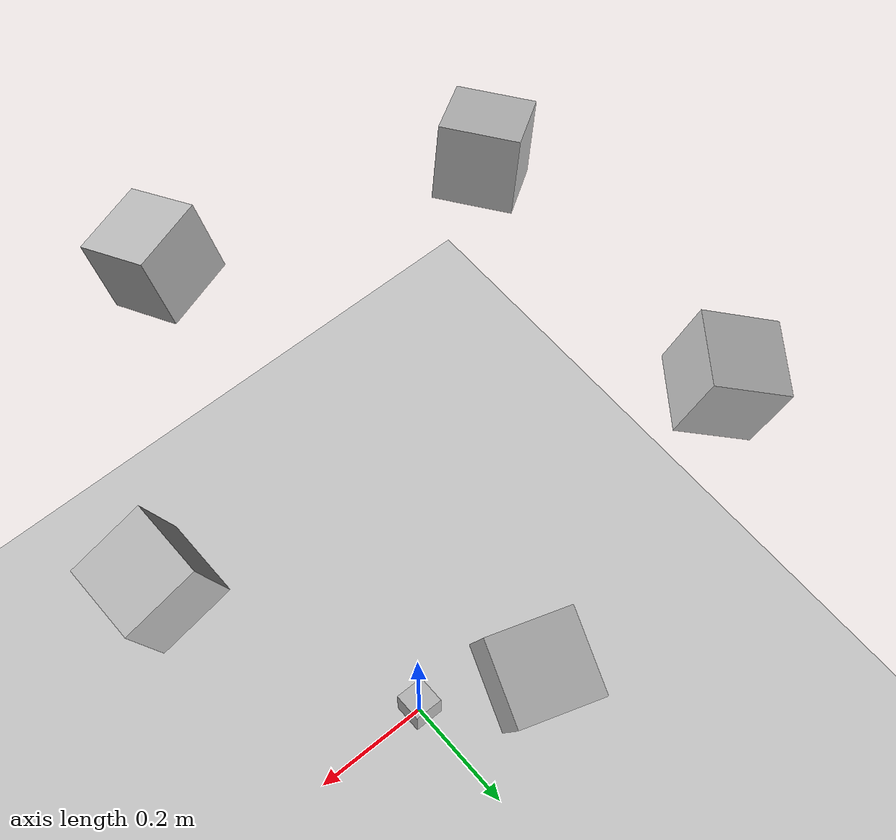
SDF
<sdf version="1.7">
 <world name="default">
  <light name="sun" type="directional">
   <cast_shadows>0</cast_shadows>
   <pose>0 0 10 0 -0 0</pose>
   <diffuse>0.8 0.8 0.8 1</diffuse>
   <specular>0.2 0.2 0.2 1</specular>
   <attenuation>
    <range>1000</range>
    <constant>0.9</constant>
    <linear>0.01</linear>
    <quadratic>0.001</quadratic>
   </attenuation>
   <direction>-0.5 0.1 -0.9</direction>
   <spot><inner_angle>0</inner_angle><outer_angle>0</outer_angle><falloff>0</falloff></spot>
  </light>
  <model name="ground_plane">
   <static>1</static>
   <link name="link">
    <collision name="collision">
     <geometry><plane><normal>0 0 1</normal><size>100 100</size></plane></geometry>
     <surface>
      <contact><collide_bitmask>65535</collide_bitmask></contact>
      <friction><ode><mu>100</mu><mu2>50</mu2></ode></friction>
     </surface>
    </collision>
    <visual name="visual">
     <cast_shadows>0</cast_shadows>
     <geometry><plane><normal>0 0 1</normal><size>100 100</size></plane></geometry>
     <material>
      <script><uri>file://media/materials/scripts/gazebo.material</uri><name>Gazebo/Grey</name></script>
     </material>
    </visual>
   </link>
  </model>
  <gravity>0 0 -9.8</gravity>
  <magnetic_field>6e-06 2.3e-05 -4.2e-05</magnetic_field>
  <atmosphere type="adiabatic"/>
  <physics type="ode">
   <max_step_size>0.001</max_step_size>
   <real_time_factor>1</real_time_factor>
   <real_time_update_rate>1000</real_time_update_rate>
  </physics>
  <scene><ambient>0.4 0.4 0.4 1</ambient><background>0.7 0.7 0.7 1</background><shadows>1</shadows></scene>
  <spherical_coordinates>
   <surface_model>EARTH_WGS84</surface_model>
   <latitude_deg>0</latitude_deg>
   <longitude_deg>0</longitude_deg>
   <elevation>0</elevation>
   <heading_deg>0</heading_deg>
  </spherical_coordinates>
  <model name="distorted_camera_1">
   <pose>0.36 0 1 0 1.22173 3.14159</pose>
   <static>1</static>
   <link name="camera_link">
    <inertial>
     <mass>0.1</mass>
     <inertia>
      <ixx>0.000166667</ixx>
      <iyy>0.000166667</iyy>
      <izz>0.000166667</izz>
      <ixy>0</ixy>
      <ixz>0</ixz>
      <iyz>0</iyz>
     </inertia>
    </inertial>
    <collision name="collision"><geometry><box><size>0.1 0.1 0.1</size></box></geometry></collision>
    <visual name="visual"><geometry><box><size>0.1 0.1 0.1</size></box></geometry></visual>
    <sensor name="pi_camera" type="camera">
     <camera>
      <horizontal_fov>0.4887</horizontal_fov>
      <image><width>1456</width><height>1088</height></image>
      <clip><near>0.1</near><far>100</far></clip>
      <noise><type>gaussian</type><mean>0</mean><stddev>0.001</stddev></noise>
     </camera>
     <plugin name="camera_controller" filename="libgazebo_ros_camera.so">
      <alwaysOn>1</alwaysOn>
      <updateRate>60.0</updateRate>
      <cameraName>pi_camera_1</cameraName>
      <imageTopicName>image_raw</imageTopicName>
      <cameraInfoTopicName>camera_info</cameraInfoTopicName>
      <frameName>camera_link</frameName>
      <hackBaseline>0.07</hackBaseline>
      <distortionK1>0.0</distortionK1>
      <distortionK2>0.0</distortionK2>
      <distortionK3>0.0</distortionK3>
      <distortionT1>0.0</distortionT1>
      <distortionT2>0.0</distortionT2>
     </plugin>
     <always_on>1</always_on>
     <update_rate>60</update_rate>
     <visualize>1</visualize>
    </sensor>
   </link>
  </model>
  <model name="aruco_reference">
   <static>1</static>
   <pose>0 0 0.025 0 -0 0</pose>
   <link name="link">
    <inertial>
     <mass>1</mass>
     <inertia>
      <ixx>0.166667</ixx>
      <ixy>0</ixy>
      <ixz>0</ixz>
      <iyy>0.166667</iyy>
      <iyz>0</iyz>
      <izz>0.166667</izz>
     </inertia>
    </inertial>
    <collision name="collision"><geometry><box><size>0.05 0.05 0.05</size></box></geometry></collision>
    <visual name="aruco_box_mesh">
     <geometry><mesh><uri>model://aruco_reference/model.dae</uri><scale>0.025 0.025 0.025</scale></mesh></geometry>
    </visual>
   </link>
  </model>
  <model name="distorted_camera_2">
   <pose>0.111246 -0.34238 1 1e-06 1.22173 1.88495</pose>
   <static>1</static>
   <link name="camera_link">
    <inertial>
     <mass>0.1</mass>
     <inertia>
      <ixx>0.000166667</ixx>
      <iyy>0.000166667</iyy>
      <izz>0.000166667</izz>
      <ixy>0</ixy>
      <ixz>0</ixz>
      <iyz>0</iyz>
     </inertia>
    </inertial>
    <collision name="collision"><geometry><box><size>0.1 0.1 0.1</size></box></geometry></collision>
    <visual name="visual"><geometry><box><size>0.1 0.1 0.1</size></box></geometry></visual>
    <sensor name="pi_camera" type="camera">
     <camera>
      <horizontal_fov>0.4887</horizontal_fov>
      <image><width>1456</width><height>1088</height></image>
      <clip><near>0.1</near><far>100</far></clip>
      <noise><type>gaussian</type><mean>0</mean><stddev>0.001</stddev></noise>
     </camera>
     <plugin name="camera_controller" filename="libgazebo_ros_camera.so">
      <alwaysOn>1</alwaysOn>
      <updateRate>60.0</updateRate>
      <cameraName>pi_camera_2</cameraName>
      <imageTopicName>image_raw</imageTopicName>
      <cameraInfoTopicName>camera_info</cameraInfoTopicName>
      <frameName>camera_link</frameName>
      <hackBaseline>0.07</hackBaseline>
      <distortionK1>0.0</distortionK1>
      <distortionK2>0.0</distortionK2>
      <distortionK3>0.0</distortionK3>
      <distortionT1>0.0</distortionT1>
      <distortionT2>0.0</distortionT2>
     </plugin>
     <always_on>1</always_on>
     <update_rate>60</update_rate>
     <visualize>1</visualize>
    </sensor>
   </link>
  </model>
  <model name="distorted_camera_3">
   <pose>-0.291246 -0.211602 1 2e-06 1.22173 0.628318</pose>
   <static>1</static>
   <link name="camera_link">
    <inertial>
     <mass>0.1</mass>
     <inertia>
      <ixx>0.000166667</ixx>
      <iyy>0.000166667</iyy>
      <izz>0.000166667</izz>
      <ixy>0</ixy>
      <ixz>0</ixz>
      <iyz>0</iyz>
     </inertia>
    </inertial>
    <collision name="collision"><geometry><box><size>0.1 0.1 0.1</size></box></geometry></collision>
    <visual name="visual"><geometry><box><size>0.1 0.1 0.1</size></box></geometry></visual>
    <sensor name="pi_camera" type="camera">
     <camera>
      <horizontal_fov>0.4887</horizontal_fov>
      <image><width>1456</width><height>1088</height></image>
      <clip><near>0.1</near><far>100</far></clip>
      <noise><type>gaussian</type><mean>0</mean><stddev>0.001</stddev></noise>
     </camera>
     <plugin name="camera_controller" filename="libgazebo_ros_camera.so">
      <alwaysOn>1</alwaysOn>
      <updateRate>60.0</updateRate>
      <cameraName>pi_camera_3</cameraName>
      <imageTopicName>image_raw</imageTopicName>
      <cameraInfoTopicName>camera_info</cameraInfoTopicName>
      <frameName>camera_link</frameName>
      <hackBaseline>0.07</hackBaseline>
      <distortionK1>0.0</distortionK1>
      <distortionK2>0.0</distortionK2>
      <distortionK3>0.0</distortionK3>
      <distortionT1>0.0</distortionT1>
      <distortionT2>0.0</distortionT2>
     </plugin>
     <always_on>1</always_on>
     <update_rate>60</update_rate>
     <visualize>1</visualize>
    </sensor>
   </link>
  </model>
  <model name="distorted_camera_4">
   <pose>0.111246 0.34238 1 4e-06 1.22173 -1.88496</pose>
   <static>1</static>
   <link name="camera_link">
    <inertial>
     <mass>0.1</mass>
     <inertia>
      <ixx>0.000166667</ixx>
      <iyy>0.000166667</iyy>
      <izz>0.000166667</izz>
      <ixy>0</ixy>
      <ixz>0</ixz>
      <iyz>0</iyz>
     </inertia>
    </inertial>
    <collision name="collision"><geometry><box><size>0.1 0.1 0.1</size></box></geometry></collision>
    <visual name="visual"><geometry><box><size>0.1 0.1 0.1</size></box></geometry></visual>
    <sensor name="pi_camera" type="camera">
     <camera>
      <horizontal_fov>0.4887</horizontal_fov>
      <image><width>1456</width><height>1088</height></image>
      <clip><near>0.1</near><far>100</far></clip>
      <noise><type>gaussian</type><mean>0</mean><stddev>0.001</stddev></noise>
     </camera>
     <plugin name="camera_controller" filename="libgazebo_ros_camera.so">
      <alwaysOn>1</alwaysOn>
      <updateRate>60.0</updateRate>
      <cameraName>pi_camera_4</cameraName>
      <imageTopicName>image_raw</imageTopicName>
      <cameraInfoTopicName>camera_info</cameraInfoTopicName>
      <frameName>camera_link</frameName>
      <hackBaseline>0.07</hackBaseline>
      <distortionK1>0.0</distortionK1>
      <distortionK2>0.0</distortionK2>
      <distortionK3>0.0</distortionK3>
      <distortionT1>0.0</distortionT1>
      <distortionT2>0.0</distortionT2>
     </plugin>
     <always_on>1</always_on>
     <update_rate>60</update_rate>
     <visualize>1</visualize>
    </sensor>
   </link>
  </model>
  <model name="distorted_camera_5">
   <pose>-0.291246 0.211606 1 -0 1.22173 -0.628319</pose>
   <static>1</static>
   <link name="camera_link">
    <inertial>
     <mass>0.1</mass>
     <inertia>
      <ixx>0.000166667</ixx>
      <iyy>0.000166667</iyy>
      <izz>0.000166667</izz>
      <ixy>0</ixy>
      <ixz>0</ixz>
      <iyz>0</iyz>
     </inertia>
    </inertial>
    <collision name="collision"><geometry><box><size>0.1 0.1 0.1</size></box></geometry></collision>
    <visual name="visual"><geometry><box><size>0.1 0.1 0.1</size></box></geometry></visual>
    <sensor name="pi_camera" type="camera">
     <camera>
      <horizontal_fov>0.4887</horizontal_fov>
      <image><width>1456</width><height>1088</height></image>
      <clip><near>0.1</near><far>100</far></clip>
      <noise><type>gaussian</type><mean>0</mean><stddev>0.001</stddev></noise>
     </camera>
     <plugin name="camera_controller" filename="libgazebo_ros_camera.so">
      <alwaysOn>1</alwaysOn>
      <updateRate>60.0</updateRate>
      <cameraName>pi_camera_5</cameraName>
      <imageTopicName>image_raw</imageTopicName>
      <cameraInfoTopicName>camera_info</cameraInfoTopicName>
      <frameName>camera_link</frameName>
      <hackBaseline>0.07</hackBaseline>
      <distortionK1>0.0</distortionK1>
      <distortionK2>0.0</distortionK2>
      <distortionK3>0.0</distortionK3>
      <distortionT1>0.0</distortionT1>
      <distortionT2>0.0</distortionT2>
     </plugin>
     <always_on>1</always_on>
     <update_rate>60</update_rate>
     <visualize>1</visualize>
    </sensor>
   </link>
  </model>
 </world>
</sdf>
